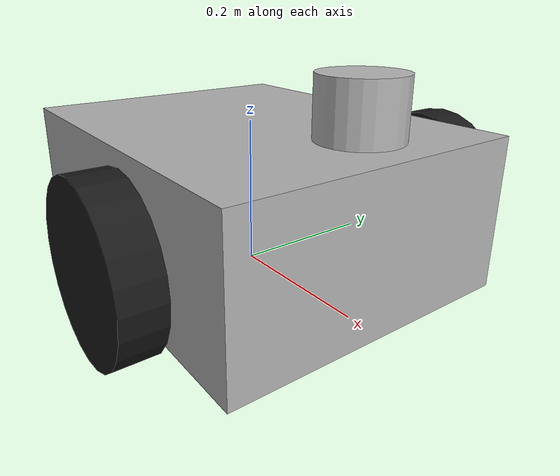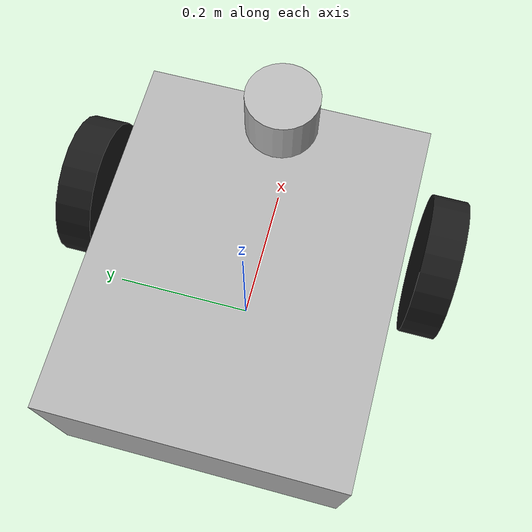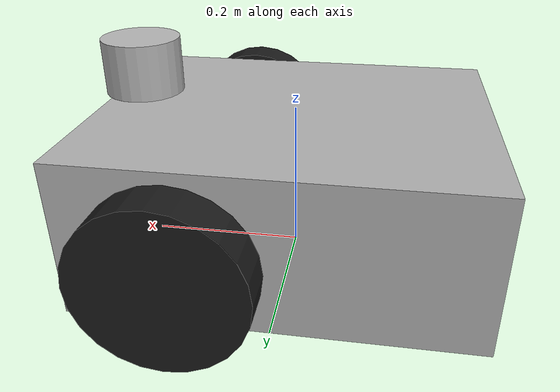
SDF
<?xml version="1.0"?>
<sdf version="1.6">
  <model name="simple_robot">

    <!-- Robot body -->
    <link name="base_link">
      <pose>0 0 0.1 0 0 0</pose>

      <collision name="base_link_collision">
        <geometry>
          <box><size>0.5 0.4 0.2</size></box>
        </geometry>
      </collision>

      <visual name="visual">
        <geometry>
          <box><size>0.5 0.4 0.2</size></box>
        </geometry>
        <material>
          <ambient>0.3 0.3 0.3 1</ambient>
          <diffuse>0.7 0.7 0.7 1</diffuse>
        </material>
      </visual>

      <inertial>
        <mass>15</mass>
        <inertia>
          <ixx>0.147</ixx>
          <iyy>0.147</iyy>
          <izz>0.147</izz>
        </inertia>
      </inertial>

      <sensor name="bumper" type="contact">
        <contact>
          <collision>base_link_collision</collision>
        </contact>
        <always_on>1</always_on>
        <update_rate>10</update_rate>
        <plugin name="gazebo_ros_bumper" filename="libgazebo_ros_bumper.so">
          <bumperTopicName>/robot/bumper</bumperTopicName>
          <frameName>base_link</frameName>
        </plugin>
      </sensor>
    </link>

    <!-- Left wheel -->
    <link name="left_wheel">
      <pose>0.1 0.25 0.1 1.5707 0 0</pose>

      <collision name="collision">
        <geometry>
          <cylinder><radius>0.1</radius><length>0.05</length></cylinder>
        </geometry>
        <surface>
          <friction>
            <ode>
              <mu>100</mu>
              <mu2>50</mu2>
            </ode>
          </friction>
        </surface>
      </collision>

      <visual name="visual">
        <geometry>
          <cylinder><radius>0.1</radius><length>0.05</length></cylinder>
        </geometry>
        <material>
          <ambient>0.1 0.1 0.1 1</ambient>
        </material>
      </visual>

      <inertial>
        <mass>2</mass>
        <inertia>
          <ixx>0.0145</ixx>
          <iyy>0.0145</iyy>
          <izz>0.0145</izz>
        </inertia>
      </inertial>
    </link>

    <!-- Right wheel -->
    <link name="right_wheel">
      <pose>0.1 -0.25 0.1 1.5707 0 0</pose>

      <collision name="collision">
        <geometry>
          <cylinder><radius>0.1</radius><length>0.05</length></cylinder>
        </geometry>
        <surface>
          <friction>
            <ode>
              <mu>100</mu>
              <mu2>50</mu2>
            </ode>
          </friction>
        </surface>
      </collision>

      <visual name="visual">
        <geometry>
          <cylinder><radius>0.1</radius><length>0.05</length></cylinder>
        </geometry>
        <material>
          <ambient>0.1 0.1 0.1 1</ambient>
        </material>
      </visual>

      <inertial>
        <mass>2</mass>
        <inertia>
          <ixx>0.0145</ixx>
          <iyy>0.0145</iyy>
          <izz>0.0145</izz>
        </inertia>
      </inertial>
    </link>

    <!-- Caster wheel -->
    <link name="caster">
      <pose>-0.2 0 0.05 0 0 0</pose>

      <collision name="collision">
        <geometry>
          <sphere><radius>0.05</radius></sphere>
        </geometry>
        <surface>
          <friction>
            <ode>
              <mu>0</mu>
              <mu2>0</mu2>
              <slip1>1.0</slip1>
              <slip2>1.0</slip2>
            </ode>
          </friction>
        </surface>
      </collision>

      <visual name="visual">
        <geometry>
          <sphere><radius>0.05</radius></sphere>
        </geometry>
      </visual>

      <inertial>
        <mass>0.5</mass>
        <inertia>
          <ixx>0.001</ixx>
          <iyy>0.001</iyy>
          <izz>0.001</izz>
        </inertia>
      </inertial>
    </link>

    <!-- Joints -->
    <joint name="left_wheel_joint" type="revolute">
      <parent>base_link</parent>
      <child>left_wheel</child>
      <axis>
        <xyz>0 0 1</xyz>
      </axis>
    </joint>

    <joint name="right_wheel_joint" type="revolute">
      <parent>base_link</parent>
      <child>right_wheel</child>
      <axis>
        <xyz>0 0 1</xyz>
      </axis>
    </joint>

    <joint name="caster_joint" type="fixed">
      <parent>base_link</parent>
      <child>caster</child>
    </joint>

    <!-- LIDAR -->
    <link name="lidar_link">
      <pose>0.2 0 0.25 0 0 0</pose>

      <visual name="visual">
        <geometry>
          <cylinder><radius>0.05</radius><length>0.07</length></cylinder>
        </geometry>
      </visual>

      <sensor name="lidar" type="ray">
        <pose>0 0 0 0 0 0</pose>
        <ray>
          <scan>
            <horizontal>
              <samples>360</samples>
              <resolution>1</resolution>
              <min_angle>-3.14159</min_angle>
              <max_angle>3.14159</max_angle>
            </horizontal>
          </scan>
          <range>
            <min>0.1</min>
            <max>10.0</max>
            <resolution>0.01</resolution>
          </range>
        </ray>
        <always_on>1</always_on>
        <update_rate>10</update_rate>
        <visualize>false</visualize>

        <plugin name="gazebo_ros_lidar" filename="libgazebo_ros_laser.so">
          <topicName>/robot/laser/scan</topicName>
          <frameName>lidar_link</frameName>
        </plugin>
      </sensor>

      <inertial>
        <mass>0.1</mass>
        <inertia>
          <ixx>0.001</ixx>
          <iyy>0.001</iyy>
          <izz>0.001</izz>
        </inertia>
      </inertial>
    </link>

    <joint name="lidar_joint" type="fixed">
      <parent>base_link</parent>
      <child>lidar_link</child>
    </joint>

    <!-- Differential Drive Plugin -->
    <plugin name="differential_drive_controller" filename="libgazebo_ros_diff_drive.so">
      <rosDebugLevel>na</rosDebugLevel>
      <publishWheelTF>false</publishWheelTF>
      <robotNamespace>/</robotNamespace>
      <publishTf>1</publishTf>
      <publishWheelJointState>false</publishWheelJointState>
      <alwaysOn>true</alwaysOn>
      <updateRate>100.0</updateRate>
      <legacyMode>true</legacyMode>
      <leftJoint>left_wheel_joint</leftJoint>
      <rightJoint>right_wheel_joint</rightJoint>
      <wheelSeparation>0.5</wheelSeparation>
      <wheelDiameter>0.2</wheelDiameter>
      <broadcastTF>1</broadcastTF>
      <wheelTorque>20</wheelTorque>
      <wheelAcceleration>1.8</wheelAcceleration>
      <commandTopic>cmd_vel</commandTopic>
      <odometryFrame>odom</odometryFrame>
      <odometryTopic>odom</odometryTopic>
      <robotBaseFrame>base_link</robotBaseFrame>
    </plugin>

    <!-- Ground Truth Plugin -->
    <plugin name="ground_truth" filename="libgazebo_ros_p3d.so">
      <alwaysOn>true</alwaysOn>
      <updateRate>100.0</updateRate>
      <bodyName>base_link</bodyName>
      <topicName>/robot/ground_truth/state</topicName>
      <frameName>world</frameName>
      <xyzOffsets>0 0 0</xyzOffsets>
      <rpyOffsets>0 0 0</rpyOffsets>
    </plugin>

  </model>
</sdf>
